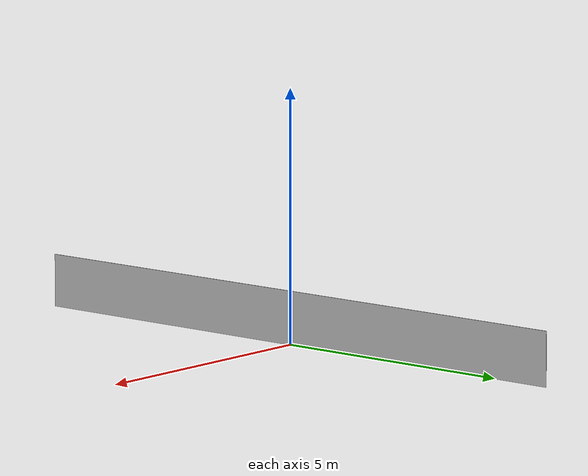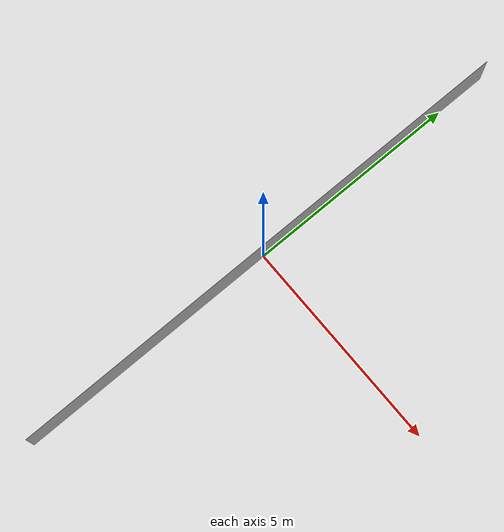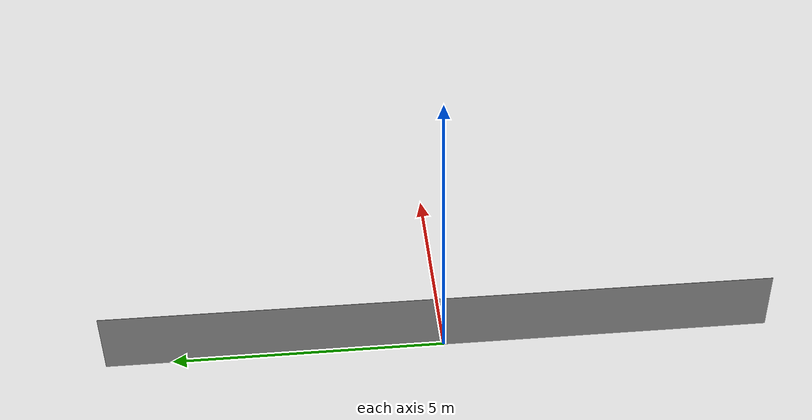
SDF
<?xml version="1.0" ?>
<sdf version="1.5">
    <model name="tennis_net">
        <static>true</static>

        <joint name="base_joint" type="fixed">
            <parent>world</parent>
            <child>tennis_net</child>

            <pose> 0 0 0.010 0 0 0 </pose>

        </joint>

        <link name="tennis_net">
            <inertial name="inertial">
                <pose> 0 0 0.53 0 0 0 </pose>
                <mass>1000</mass>
                <inertia>
                    <ixx>1</ixx>
                    <ixy>1</ixy>
                    <ixz>1</ixz>
                    <iyy>1</iyy>
                    <iyz>1</iyz>
                    <izz>1</izz>
                </inertia>
            </inertial>
            <visual name="visual">
                <pose> 0 0 0.53 0 0 0 </pose>
                <geometry>
                    <box>
                        <size> 0.01 12.4 1.06 </size>
                    </box>
                </geometry>
                <material>
                    <script>
                        <uri>file://media/materials/scripts/gazebo.material</uri>
                        <name>Gazebo/Grey</name>
                    </script>
                </material>
            </visual>

            <collision name="collision">
                <pose> 0 0 0.53 0 0 0 </pose>
                <geometry>
                    <box>
                        <size> 8.01 12.4 1.06 </size>
                    </box>
                </geometry>
                <surface>
                    <contact>
                        <collide_bitmask>0xffff</collide_bitmask>
                    </contact>
                    <friction>
                        <ode>
                            <mu>100</mu>
                            <mu2>50</mu2>
                        </ode>
                    </friction>
                    <contact>
                        <collide_without_contact>1</collide_without_contact>
                        <collide_without_contact_bitmask>0</collide_without_contact_bitmask>
                        <collide_bitmask>1</collide_bitmask>
                        <poissons_ratio> 100 </poissons_ratio>
                        <elastic_modulus> 0 </elastic_modulus>
                        <ode>
                            <soft_cfm>0</soft_cfm>
                            <soft_erp>0.2</soft_erp>
                            <kp>100000000</kp>
                            <kd>0</kd>
                            <max_vel>1000</max_vel>
                            <min_depth>0.01</min_depth>
                        </ode>
                    </contact>
                </surface>
            </collision>
        </link>
    </model>
</sdf>
